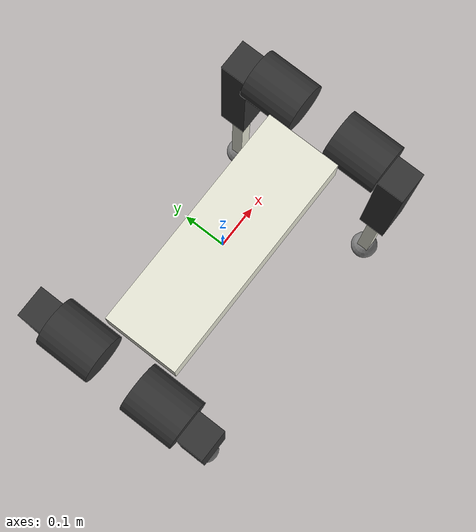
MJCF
<mujoco model="Hound_description">
  <compiler angle="radian"/>

  <worldbody>
    <geom size="0.281 0.0925 0.04" type="box" rgba="0.913725 0.913725 0.847059 1"/>
    <body name="RR_shoulder" pos="-0.349 -0.1 0">
      <inertial pos="-0.00426027 -0.0132542 9.18e-06" quat="0.502942 0.494732 -0.508336 0.493846" mass="4.2947" diaginertia="0.0104353 0.00932098 0.00773167"/>
      <joint name="RR_roll_joint" pos="0 0 0" axis="1 0 0" range="-1.48353 1.48353" actuatorfrcrange="-200 200"/>
      <geom size="0.0605 0.0665" pos="0 -0.0125 0" quat="0.707107 0.707107 0 0" type="cylinder" rgba="0.2 0.2 0.2 1"/>
      <body name="RR_thigh" pos="0 -0.1135 0">
        <inertial pos="0.0135346 0.0187918 -0.0963899" quat="0.948323 0.037606 0.0826854 -0.304027" mass="1.6351" diaginertia="0.0245766 0.0230389 0.00245813"/>
        <joint name="RR_hip_joint" pos="0 0 0" axis="0 1 0" range="-6.28319 6.28319" actuatorfrcrange="-200 200"/>
        <geom size="0.039 0.0345 0.17" pos="0 0 -0.16395" type="box" rgba="0.2 0.2 0.2 1"/>
        <body name="RR_calf" pos="0 0 -0.3279">
          <inertial pos="0 -5.64383e-05 -0.17302" quat="1 -7.81616e-05 1.3905e-05 3.87362e-05" mass="0.933132" diaginertia="0.0213855 0.0213844 0.000525212"/>
          <joint name="RR_knee_joint" pos="0 0 0" axis="0 1 0" range="-2.79253 2.79253" actuatorfrcrange="-400 400"/>
          <geom size="0.016 0.016 0.175" pos="0 0 -0.175" type="box" rgba="0.913725 0.913725 0.847059 1"/>
          <geom size="0.036" pos="0 0 -0.35"/>
        </body>
      </body>
    </body>
    <body name="RL_shoulder" pos="-0.349 0.1 0">
      <inertial pos="-0.00426027 0.0132542 9.18e-06" quat="0.494732 0.502942 -0.493846 0.508336" mass="4.2947" diaginertia="0.0104353 0.00932098 0.00773167"/>
      <joint name="RL_roll_joint" pos="0 0 0" axis="1 0 0" range="-1.48353 1.48353" actuatorfrcrange="-200 200"/>
      <geom size="0.0605 0.0665" pos="0 0.0125 0" quat="0.707107 0.707107 0 0" type="cylinder" rgba="0.2 0.2 0.2 1"/>
      <body name="RL_thigh" pos="0 0.1135 0">
        <inertial pos="0.0135346 -0.0187918 -0.0963899" quat="0.948323 -0.037606 0.0826854 0.304027" mass="1.6351" diaginertia="0.0245766 0.0230389 0.00245813"/>
        <joint name="RL_hip_joint" pos="0 0 0" axis="0 1 0" range="-6.28319 6.28319" actuatorfrcrange="-200 200"/>
        <geom size="0.039 0.0345 0.17" pos="0 0 -0.16395" type="box" rgba="0.2 0.2 0.2 1"/>
        <body name="RL_calf" pos="0 0 -0.3279">
          <inertial pos="0 5.64383e-05 -0.17302" quat="1 7.81616e-05 1.3905e-05 -3.87362e-05" mass="0.933132" diaginertia="0.0213855 0.0213844 0.000525212"/>
          <joint name="RL_knee_joint" pos="0 0 0" axis="0 1 0" range="-2.79253 2.79253" actuatorfrcrange="-400 400"/>
          <geom size="0.016 0.016 0.175" pos="0 0 -0.175" type="box" rgba="0.913725 0.913725 0.847059 1"/>
          <geom size="0.036" pos="0 0 -0.35"/>
        </body>
      </body>
    </body>
    <body name="FR_shoulder" pos="0.349 -0.1 0">
      <inertial pos="-0.00426027 -0.0132542 9.18e-06" quat="0.502942 0.494732 -0.508336 0.493846" mass="4.2947" diaginertia="0.0104353 0.00932098 0.00773167"/>
      <joint name="FR_roll_joint" pos="0 0 0" axis="1 0 0" range="-1.48353 1.48353" actuatorfrcrange="-200 200"/>
      <geom size="0.0605 0.0665" pos="0 -0.0125 0" quat="0.707107 0.707107 0 0" type="cylinder" rgba="0.2 0.2 0.2 1"/>
      <body name="FR_thigh" pos="0 -0.1135 0">
        <inertial pos="0.0135346 0.0187918 -0.0963899" quat="0.948323 0.037606 0.0826854 -0.304027" mass="1.6351" diaginertia="0.0245766 0.0230389 0.00245813"/>
        <joint name="FR_hip_joint" pos="0 0 0" axis="0 1 0" range="-6.28319 6.28319" actuatorfrcrange="-200 200"/>
        <geom size="0.039 0.0345 0.17" pos="0 0 -0.16395" type="box" rgba="0.2 0.2 0.2 1"/>
        <body name="FR_calf" pos="0 0 -0.3279">
          <inertial pos="0 -5.64383e-05 -0.17302" quat="1 -7.81616e-05 1.3905e-05 3.87362e-05" mass="0.933132" diaginertia="0.0213855 0.0213844 0.000525212"/>
          <joint name="FR_knee_joint" pos="0 0 0" axis="0 1 0" range="-2.79253 2.79253" actuatorfrcrange="-400 400"/>
          <geom size="0.016 0.016 0.175" pos="0 0 -0.175" type="box" rgba="0.913725 0.913725 0.847059 1"/>
          <geom size="0.036" pos="0 0 -0.35"/>
        </body>
      </body>
    </body>
    <body name="FL_shoulder" pos="0.349 0.1 0">
      <inertial pos="-0.00426027 0.0132542 9.18e-06" quat="0.494732 0.502942 -0.493846 0.508336" mass="4.2947" diaginertia="0.0104353 0.00932098 0.00773167"/>
      <joint name="FL_roll_joint" pos="0 0 0" axis="1 0 0" range="-1.48353 1.48353" actuatorfrcrange="-200 200"/>
      <geom size="0.0605 0.0665" pos="0 0.0125 0" quat="0.707107 0.707107 0 0" type="cylinder" rgba="0.2 0.2 0.2 1"/>
      <body name="FL_thigh" pos="0 0.1135 0">
        <inertial pos="0.0135346 -0.0187918 -0.0963899" quat="0.948323 -0.037606 0.0826854 0.304027" mass="1.6351" diaginertia="0.0245766 0.0230389 0.00245813"/>
        <joint name="FL_hip_joint" pos="0 0 0" axis="0 1 0" range="-6.28319 6.28319" actuatorfrcrange="-200 200"/>
        <geom size="0.039 0.0345 0.17" pos="0 0 -0.16395" type="box" rgba="0.2 0.2 0.2 1"/>
        <body name="FL_calf" pos="0 0 -0.3279">
          <inertial pos="0 5.64383e-05 -0.17302" quat="1 7.81616e-05 1.3905e-05 -3.87362e-05" mass="0.933132" diaginertia="0.0213855 0.0213844 0.000525212"/>
          <joint name="FL_knee_joint" pos="0 0 0" axis="0 1 0" range="-2.79253 2.79253" actuatorfrcrange="-400 400"/>
          <geom size="0.016 0.016 0.175" pos="0 0 -0.175" type="box" rgba="0.913725 0.913725 0.847059 1"/>
          <geom size="0.036" pos="0 0 -0.35"/>
        </body>
      </body>
    </body>
  </worldbody>
  <actuator>
    <motor name="RR_roll"  joint="RR_roll_joint" gear="25" ctrlrange="-1 1"/>
    <motor name="RR_hip"   joint="RR_hip_joint"  gear="25" ctrlrange="-1 1"/>
    <motor name="RR_knee"  joint="RR_knee_joint" gear="25" ctrlrange="-1 1"/>
    <motor name="RL_roll"  joint="RL_roll_joint" gear="25" ctrlrange="-1 1"/>
    <motor name="RL_hip"   joint="RL_hip_joint"  gear="25" ctrlrange="-1 1"/>
    <motor name="RL_knee"  joint="RL_knee_joint" gear="25" ctrlrange="-1 1"/>
    <motor name="FR_roll"  joint="FR_roll_joint" gear="25" ctrlrange="-1 1"/>
    <motor name="FR_hip"   joint="FR_hip_joint"  gear="25" ctrlrange="-1 1"/>
    <motor name="FR_knee"  joint="FR_knee_joint" gear="25" ctrlrange="-1 1"/>
    <motor name="FL_roll"  joint="FL_roll_joint" gear="25" ctrlrange="-1 1"/>
    <motor name="FL_hip"   joint="FL_hip_joint"  gear="25" ctrlrange="-1 1"/>
    <motor name="FL_knee"  joint="FL_knee_joint" gear="25" ctrlrange="-1 1"/>
  </actuator>
</mujoco>
